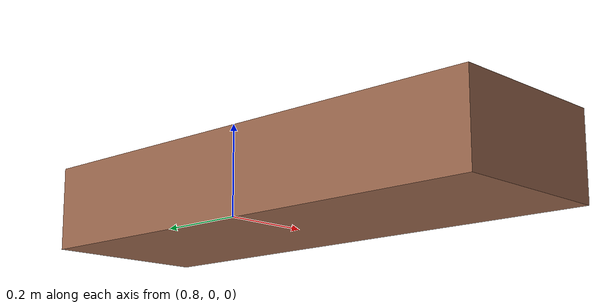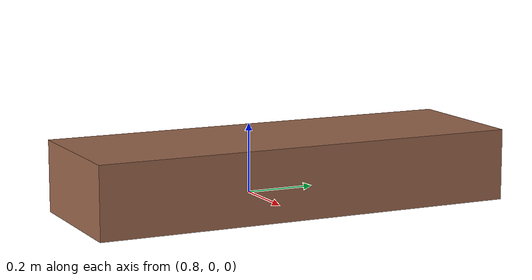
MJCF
<?xml version="1.0" encoding="utf-8"?>
<!-- 原生 MJCF 地形示例：直接编辑 worldbody 下的 geom，即时生效。
     本文件供 deploy_mujoco.py 的 terrain-xml 参数使用。
     参数化模板由 terrain_loader.py 在加载时生成碰撞体，不含机器人。
     编辑 data 后重新启动部署；无需再改 Python，命令行覆盖值会打印在运行摘要中。 -->
<mujoco model="custom_terrain">
  <compiler angle="radian"/>
  <custom>
    <text name="terrain_kind" data="custom"/>
    <!-- 公共参数：长度单位 m；世界 +X 为路线前进方向，+Y 为左，+Z 为上。 -->
    <!-- width：路线宽度；生成障碍之外保留 z=0 无限平面，方便自由操控。 -->
    <numeric name="width" data="4.0"/>
    <!-- friction：滑动 / 扭转 / 滚动摩擦；应用于生成的地面和障碍。 -->
    <numeric name="friction" data="1.0 0.01 0.01"/>
    <!-- spawn_xy：机器人出生世界坐标 x y；z 自动射线查询 + 站立/趴下偏置。 -->
    <numeric name="spawn_xy" data="-1.0 0.0"/>
    <!-- spawn_yaw_deg：出生偏航角，单位度；0 表示朝 +X。 -->
    <numeric name="spawn_yaw_deg" data="0"/>
    <!-- 自定义路线的统计终点，修改几何后自行同步；所有长度为 m。 -->
    <numeric name="goal_x" data="3.0"/>
  </custom>
  <worldbody>
    <geom name="test_box" type="box" pos="1.0 0.0 0.1" size="0.2 0.6 0.1"
          group="0" contype="1" conaffinity="1" condim="3"
          friction="1.0 0.01 0.01" rgba="0.6 0.4 0.3 1"/>
  </worldbody>
</mujoco>
